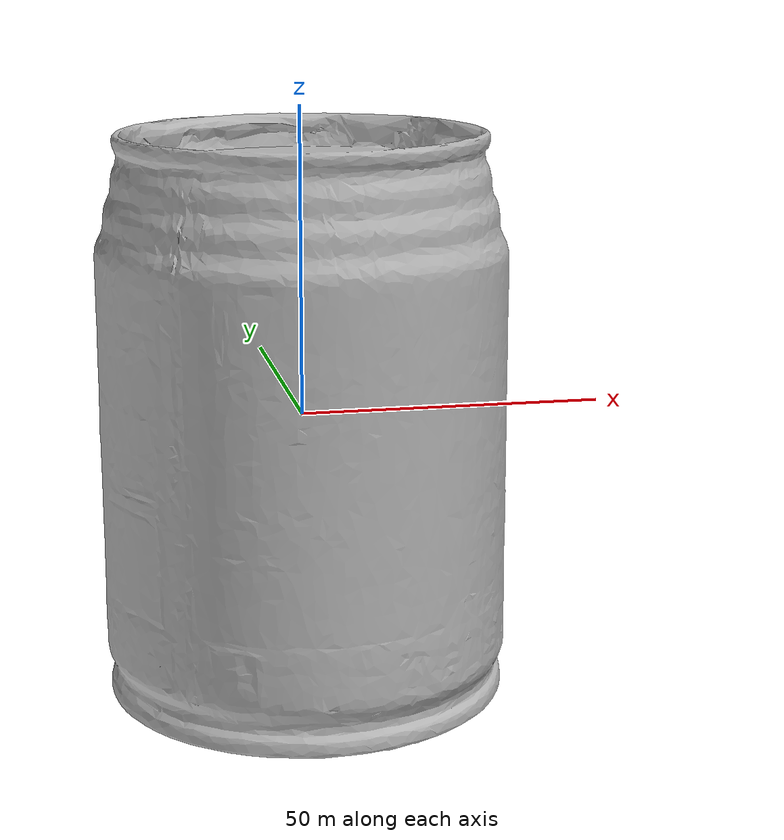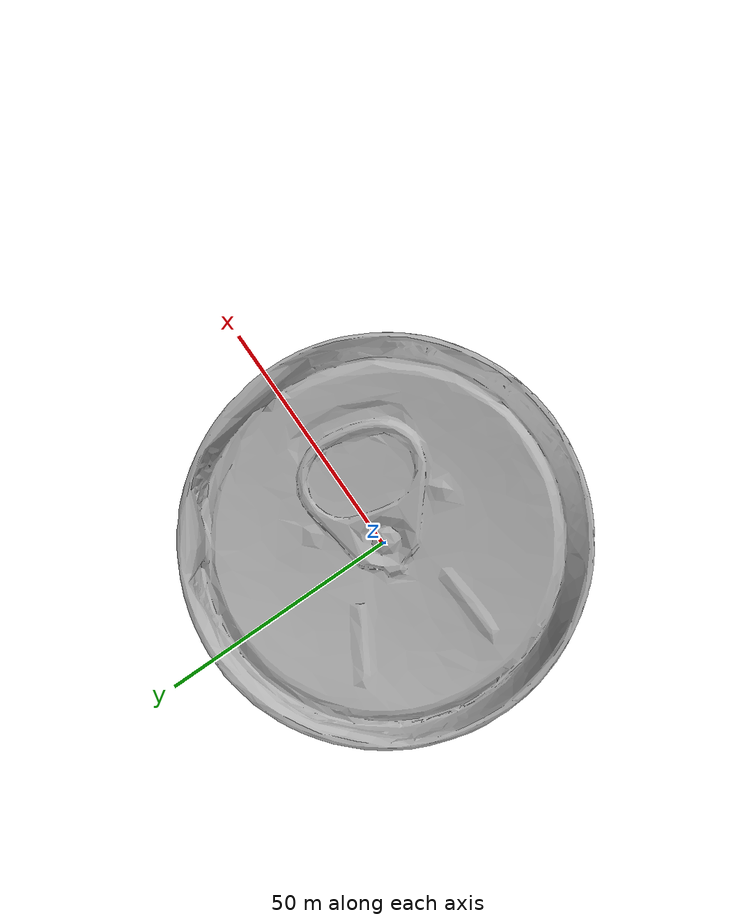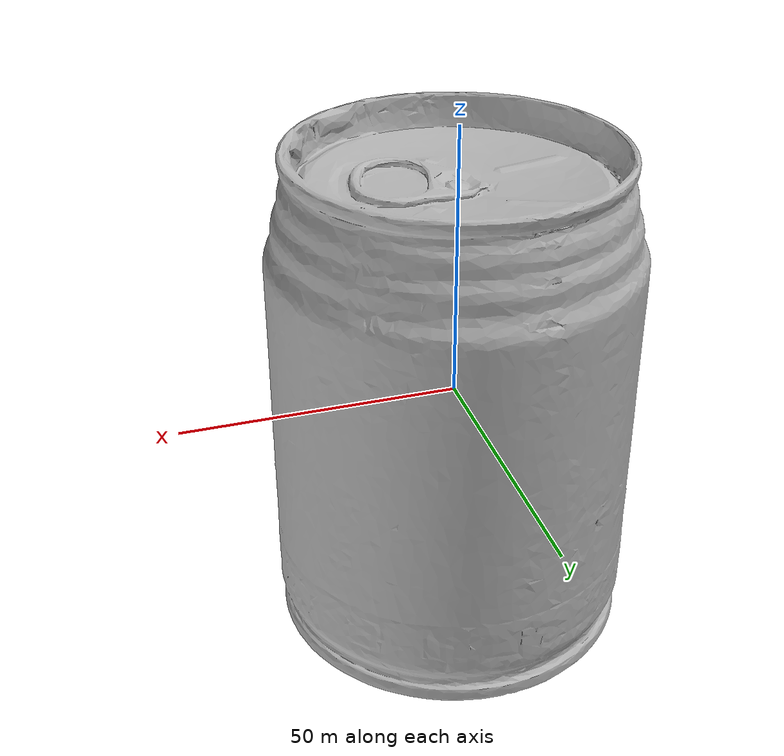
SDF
<sdf version="1.4">
 <world name="default">
  <light name="light1" type="point">
   <pose>0 0 1 0 0 0</pose>
   <diffuse>3 3 3 1</diffuse>
   <specular>3 3 3 1</specular>
  </light>
  <light name="light2" type="point">
   <pose>0 0.5 2 0 0 0</pose>
   <diffuse>1 1 1 1</diffuse>
   <specular>1 1 1 1</specular>
  </light>
  <light name="light3" type="point">
   <pose>0 0.5 2 0 0 0</pose>
   <diffuse>3 3 3 1</diffuse>
   <specular>3 3 3 1</specular>
  </light>
  <scene><ambient>0.7 0.7 0.7</ambient></scene>
  <model name="box1">
   <link name="link_box1">
    <collision name="default">
     <geometry>
      <mesh><uri>model://wooden_puzzle1/collision_meshes/collision.obj</uri><scale>1.0 1.0 1.0</scale></mesh>
     </geometry>
     <surface>
      <friction><ode><mu>0.5</mu><mu2>0.5</mu2></ode></friction>
      <contact><ode><max_vel>0</max_vel><min_depth>0.0001</min_depth><kp>1e8</kp></ode></contact>
     </surface>
    </collision>
    <visual name="default">
     <geometry>
      <mesh><uri>model://wooden_puzzle1/visual_meshes/visual.dae</uri><scale>1.0 1.0 1.0</scale></mesh>
     </geometry>
    </visual>
    <inertial>
     <mass>0.020629532635211945</mass>
     <pose>-0.0001735068071866408 7.972260937094688e-05 -9.191555000143126e-05 -0.07784798349428995 -0.2636160818751574 -0.552872324185161</pose>
     <inertia>
      <ixx>3.8922285e-06</ixx>
      <iyy>3.817302e-06</iyy>
      <izz>3.8628423e-06</izz>
      <ixy>0</ixy>
      <ixz>0</ixz>
      <iyz>0</iyz>
     </inertia>
    </inertial>
   </link>
   <pose>0.13177751004695892 0.3770477771759033 0.016802016645669937 0.010511417103396238 -0.009453403871156087 -2.1401389473015118</pose>
  </model>
  <model name="box3">
   <link name="link_box3">
    <collision name="default">
     <geometry>
      <mesh><uri>model://wooden_puzzle2/collision_meshes/collision.obj</uri><scale>1.0 1.0 1.0</scale></mesh>
     </geometry>
     <surface>
      <friction><ode><mu>0.5</mu><mu2>0.5</mu2></ode></friction>
      <contact><ode><max_vel>0</max_vel><min_depth>0.0001</min_depth><kp>1e8</kp></ode></contact>
     </surface>
    </collision>
    <visual name="default">
     <geometry>
      <mesh><uri>model://wooden_puzzle2/visual_meshes/visual.dae</uri><scale>1.0 1.0 1.0</scale></mesh>
     </geometry>
    </visual>
    <inertial>
     <mass>0.05583015829324722</mass>
     <pose>2.7402536943554878e-05 4.997663199901581e-05 6.587122334167361e-05 -0.19203199902598803 0.6112853789707493 -0.6338693450254121</pose>
     <inertia>
      <ixx>1.0378231e-05</ixx>
      <iyy>1.06642165e-05</iyy>
      <izz>1.0512509e-05</izz>
      <ixy>0</ixy>
      <ixz>0</ixz>
      <iyz>0</iyz>
     </inertia>
    </inertial>
   </link>
   <pose>-0.06767148524522781 -0.11893980950117111 0.016917724162340164 0.020848324339791387 0.0007213857860664454 -2.319800540111997</pose>
  </model>
  <model name="can1">
   <link name="link_can1">
    <collision name="default">
     <geometry>
      <mesh><uri>model://pepsi/collision_meshes/collision.obj</uri><scale>1.0 1.0 1.0</scale></mesh>
     </geometry>
     <surface>
      <friction><ode><mu>0.5</mu><mu2>0.5</mu2></ode></friction>
      <contact><ode><max_vel>0</max_vel><min_depth>0.0001</min_depth><kp>1e8</kp></ode></contact>
     </surface>
    </collision>
    <visual name="default">
     <geometry><mesh><uri>model://pepsi/visual_meshes/visual.dae</uri><scale>1.0 1.0 1.0</scale></mesh></geometry>
    </visual>
    <inertial>
     <mass>0.49348899722099304</mass>
     <pose>-7.5590331107378e-05 2.9931279641459696e-05 -0.0003384356386959553 -0.0010677622415870868 -0.0021735774955872703 0.5673701275352521</pose>
     <inertia>
      <ixx>0.0009831247</ixx>
      <iyy>0.0009824084</iyy>
      <izz>0.00020924417</izz>
      <ixy>0</ixy>
      <ixz>0</ixz>
      <iyz>0</iyz>
     </inertia>
    </inertial>
   </link>
   <pose>0.05217083543539047 0.16762514412403107 0.0744963139295578 -1.7657640943503764e-05 2.2008931455430608e-06 -2.396855486279953</pose>
  </model>
  <model name="can2">
   <link name="link_can2">
    <collision name="default">
     <geometry>
      <mesh><uri>model://redbull/collision_meshes/collision.obj</uri><scale>1.0 1.0 1.0</scale></mesh>
     </geometry>
     <surface>
      <friction><ode><mu>0.5</mu><mu2>0.5</mu2></ode></friction>
      <contact><ode><max_vel>0</max_vel><min_depth>0.0001</min_depth><kp>1e8</kp></ode></contact>
     </surface>
    </collision>
    <visual name="default">
     <geometry>
      <mesh><uri>model://redbull/visual_meshes/visual.dae</uri><scale>1.0 1.0 1.0</scale></mesh>
     </geometry>
    </visual>
    <inertial>
     <mass>0.3443465232849121</mass>
     <pose>-2.2127078409539536e-05 -0.00012659528874792159 -0.0006860987632535398 0.0011367237692686564 -0.010800964902263904 0.5859097418646089</pose>
     <inertia>
      <ixx>0.0003237599</ixx>
      <iyy>0.00032403314</iyy>
      <izz>0.00019212745</izz>
      <ixy>0</ixy>
      <ixz>0</ixz>
      <iyz>0</iyz>
     </inertia>
    </inertial>
   </link>
   <pose>0.09769666939973831 -0.10417746007442474 0.04638562351465225 -0.010488536019384402 0.0072610767691967774 1.7193086080171471</pose>
  </model>
  <physics type="ode">
   <max_contacts>50</max_contacts>
   <ode>
    <solver><type>quick</type><iters>75</iters></solver>
    <constraints>
     <contact_max_correcting_vel>0</contact_max_correcting_vel>
     <contact_surface_layer>0</contact_surface_layer>
    </constraints>
   </ode>
  </physics>
 </world>
</sdf>
